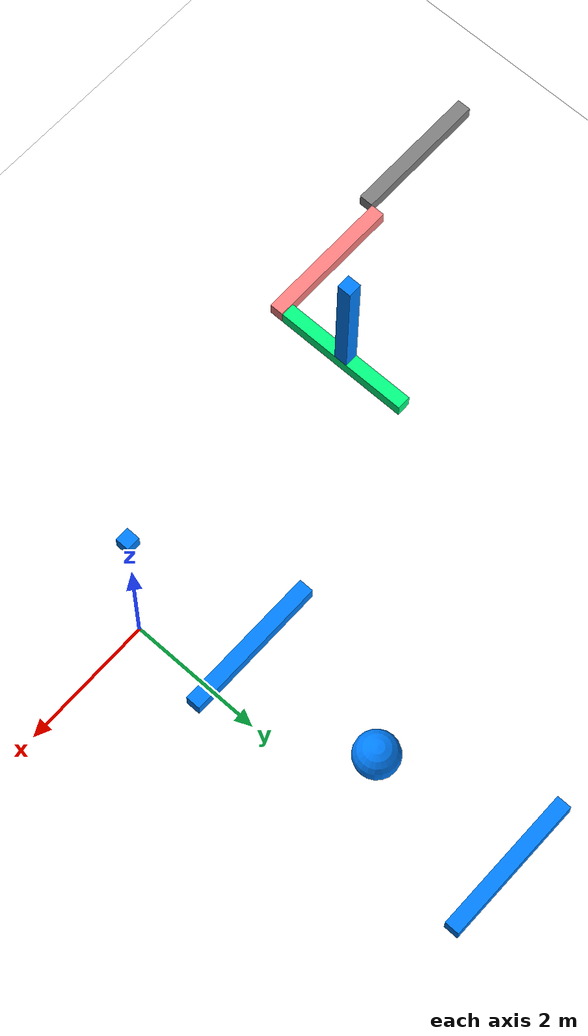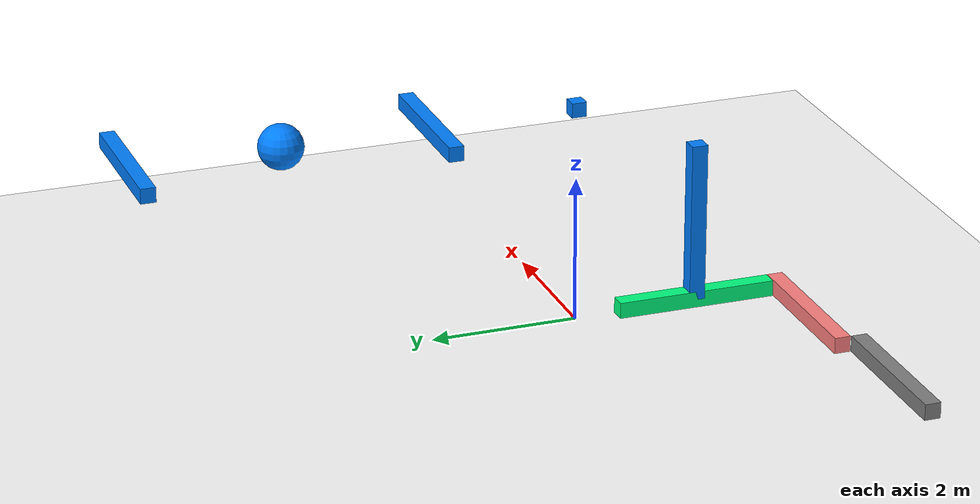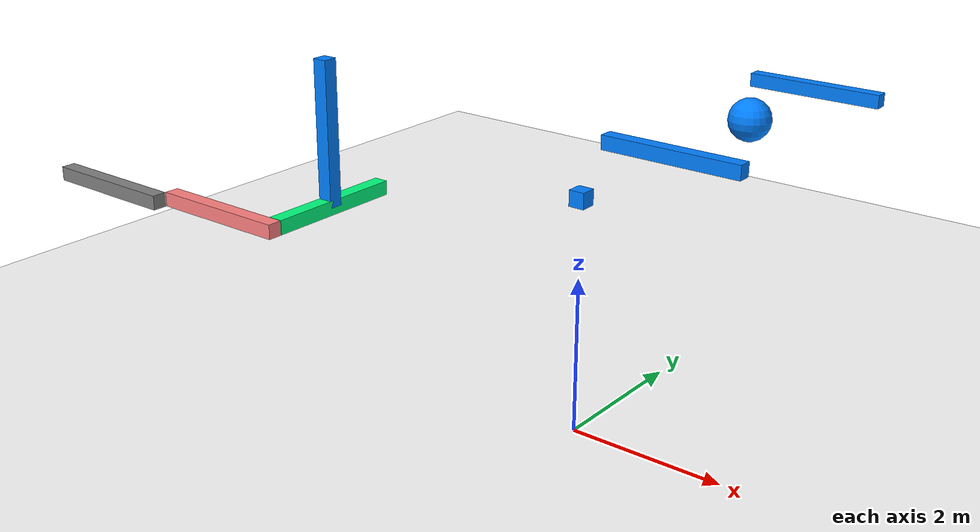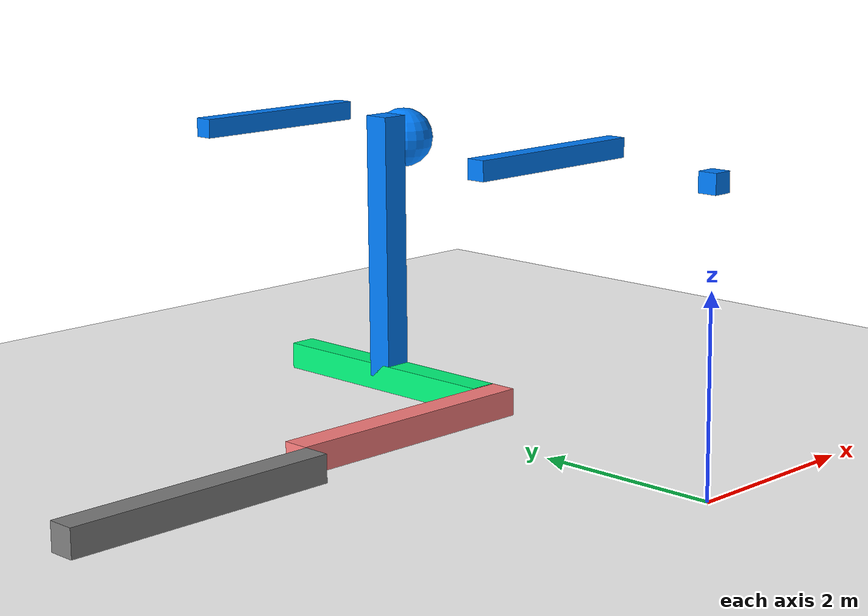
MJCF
<!-- 關節範例 -->
<mujoco model="simple_box">
	<compiler angle="degree" coordinate="local"/>
	<option timestep="0.002" gravity="0 0 -9.81"/>

	<worldbody>
		<!-- 地板 -->
		<!-- friction="滑動摩擦 扭轉摩擦 滾動摩擦" -->
		<geom name="floor" type="plane" pos="0 0 0" size="10 10 0.1" rgba="10 10 10 0.3" friction="1 0.005 0.001"/>

		<!-- 方塊 (自由掉落) -->
		<body name="box" pos="0 0 3">
			<!-- stiffness="彈力" damping=可能會不穩定 -->
			<joint type="free" stiffness="50" damping="0" frictionloss="10"/>
			<geom type="box" density="5000" size="0.1 0.1 0.1" rgba="0 0.5 1 1" friction="0.1 0.002 0.0005"/>
		</body>

		<!-- (ball joint) -->
		<body name="ball_joint" pos="0 2 3">
			<joint type="ball" pos="-1 0 0" stiffness="500" frictionloss="100"/>
			<geom type="box" size="1 0.1 0.1" rgba="0 0.5 1 1" friction="0.1 0.002 0.0005"/>
		</body>

		<!-- (slide joint) -->
		<body name="slide_joint" pos="0 4 3">
			<joint type="slide" axis="0 0 1" stiffness="1000" frictionloss="100"/>
			<geom type="sphere" size="0.3" rgba="0 0.5 1 1" friction="0.1 0.002 0.0005"/>
		</body>

		<!-- (hinge joint) -->
		<body name="hinge_joint" pos="0 6 3">
			<joint type="hinge" pos="1 0 0" axis="0 1 0" stiffness="500" frictionloss="100"/>
			<geom type="box" density="5000" size="1 0.1 0.1" rgba="0 0.5 1 1" friction="0.1 0.002 0.0005"/>
		</body>

		<!-- (muti joint) -->
		<body name="base" pos="-4 0 3">
			<joint type="free"/>
			<geom type="box" size="0.1 0.1 1" rgba="0 0.5 1 1"/>

			<body name="T" pos="0 0 -1">
				<geom type="box" size="0.1 1 0.1" rgba="0 1 0.5 1"/>

				<body name="L" pos="-0.9 -1.11 0">
					<joint type="hinge" pos="0.9 0 0" axis="0 1 0" stiffness="500" frictionloss="100"/>
					<geom type="box" size="1 0.1 0.1" rgba="1 0.5 0.5 1"/>

					<body name="F" pos="-2 -0.21 0">
						<joint type="hinge" pos="0.9 0 0" axis="0 1 0" stiffness="500" frictionloss="100"/>
						<geom type="box" size="1 0.1 0.1" rgba="0.5 0.5 0.5 1"/>
					</body>
				</body>
			</body>
		</body>
	</worldbody>

	<actuator/>
</mujoco>
